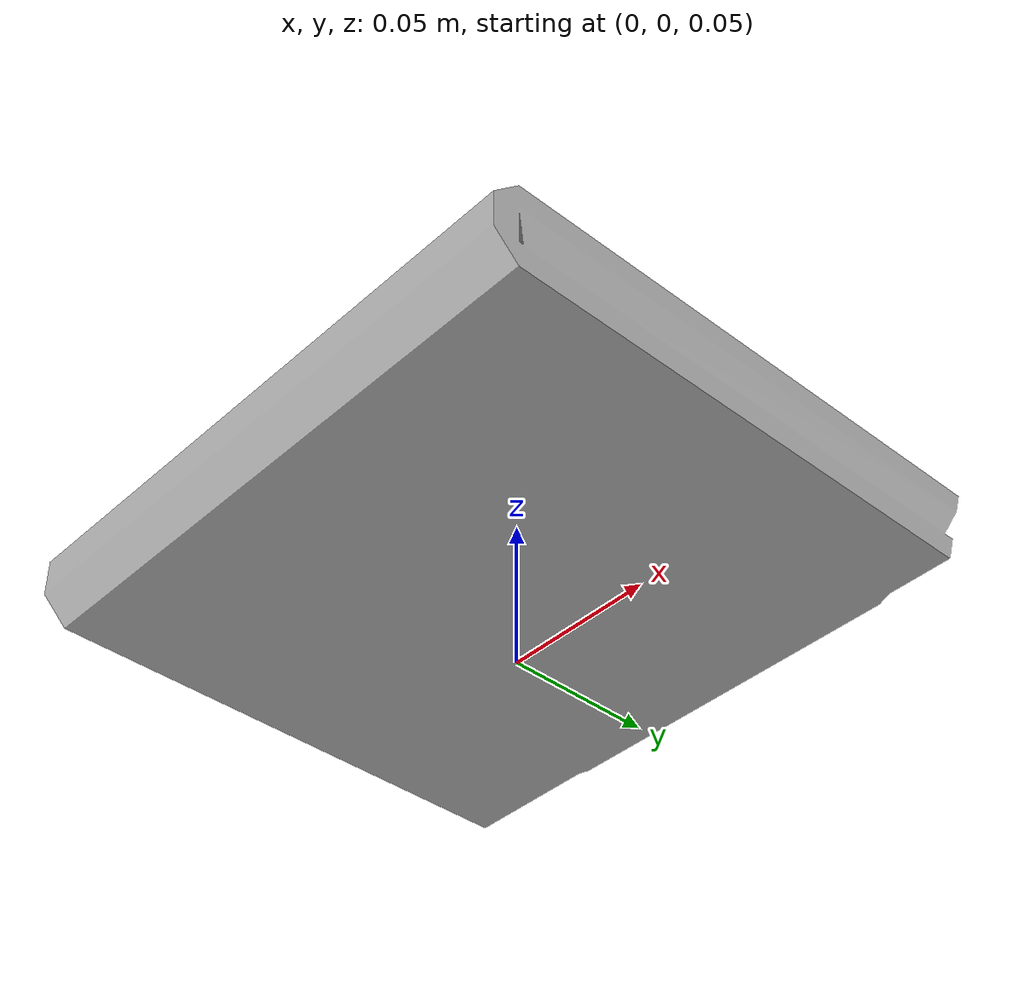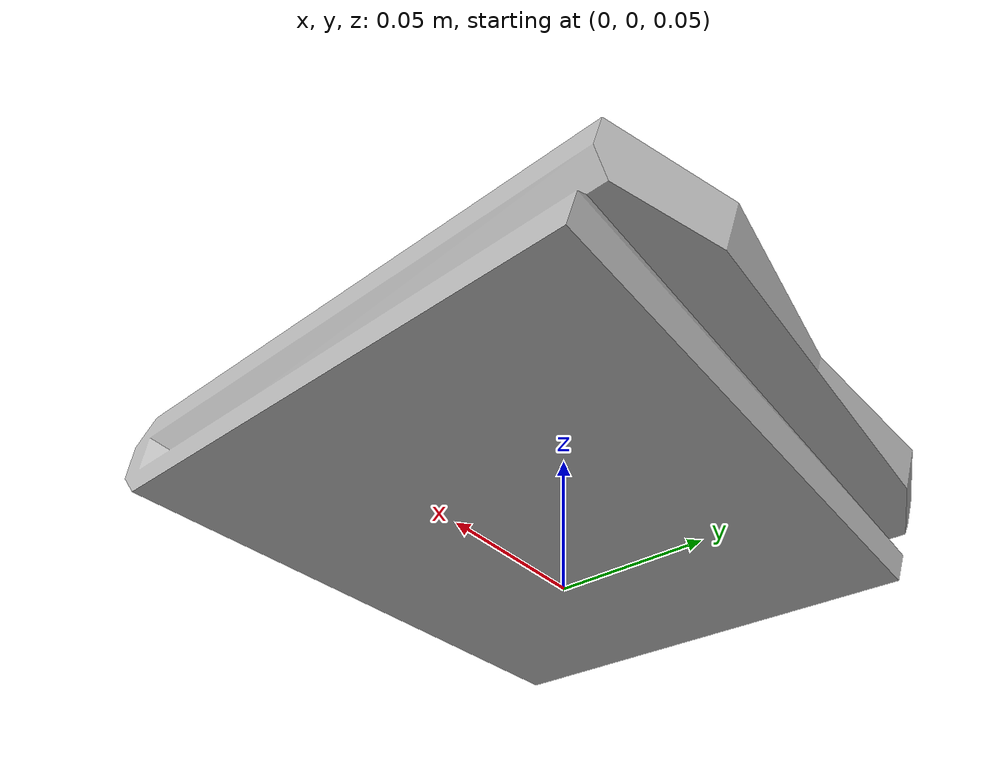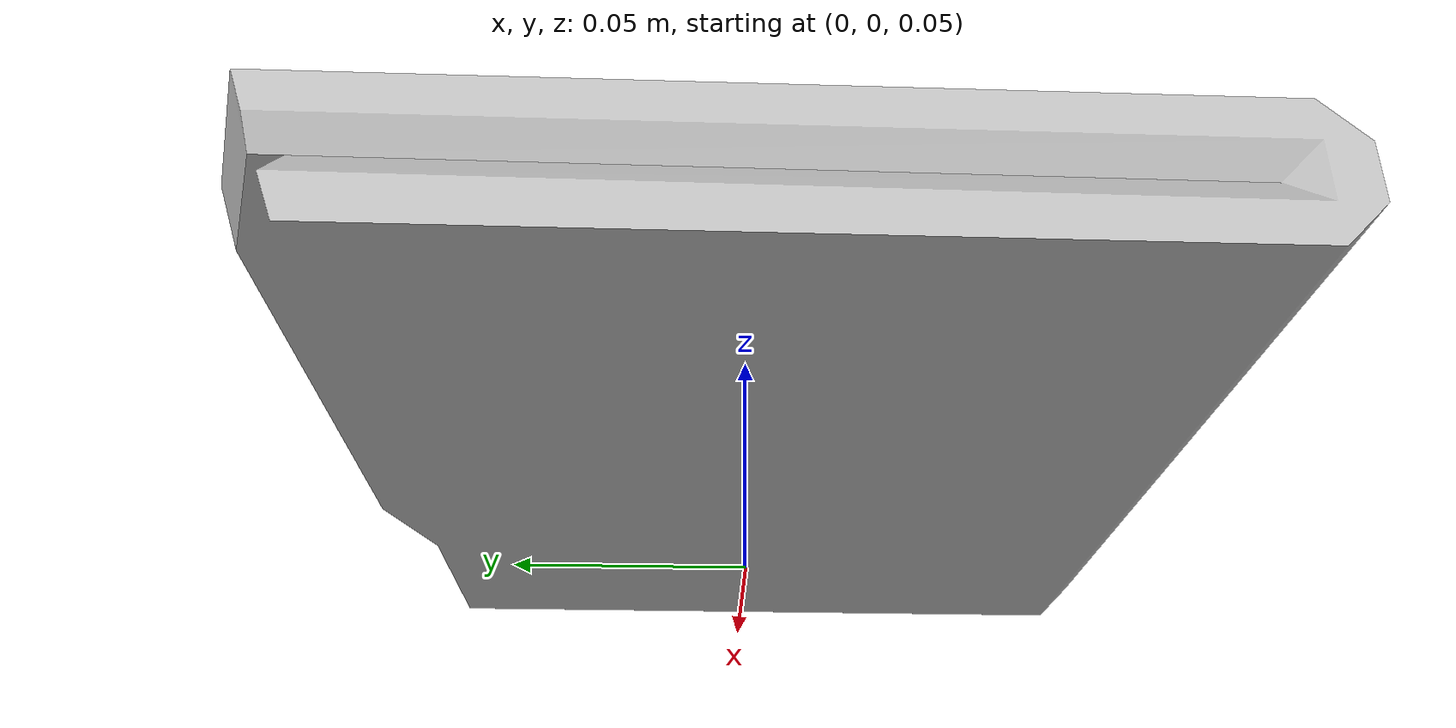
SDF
<?xml version="1.0"?>
<sdf version="1.8">
  <model name="folded_shirt_white">
    <static>false</static>

    <pose>0 0 0 1.5708 0 0</pose>

    <link name="link">
      <inertial>
        <mass>0.25</mass>
        <inertia>
          <ixx>0.001</ixx>
          <ixy>0</ixy>
          <ixz>0</ixz>
          <iyy>0.001</iyy>
          <iyz>0</iyz>
          <izz>0.001</izz>
        </inertia>
      </inertial>

      <collision name="collision">
        <geometry>
          <box>
            <size>0.28 0.22 0.05</size>
          </box>
        </geometry>
      </collision>

      <visual name="visual">
        <cast_shadows>false</cast_shadows>

        <geometry>
          <mesh>
            <uri>model://folded_shirt_white/meshes/simple_folded_shirt.obj</uri>

            <scale>0.1 0.1 0.1</scale>
          </mesh>
        </geometry>

      </visual>
    </link>
  </model>
</sdf>
